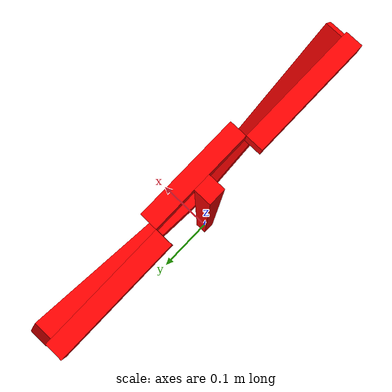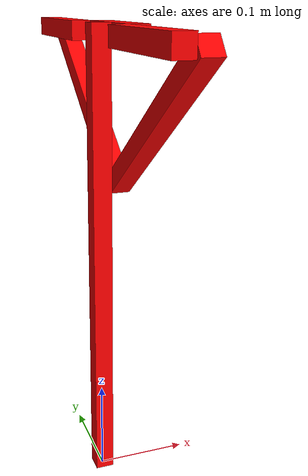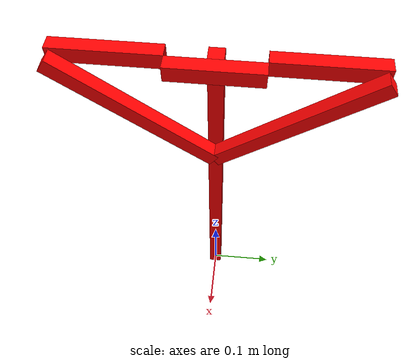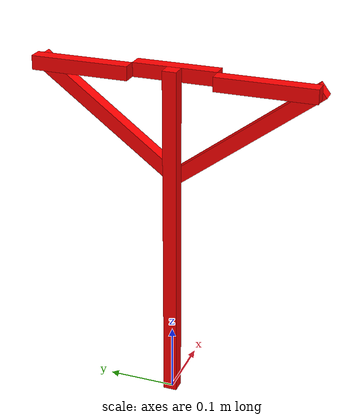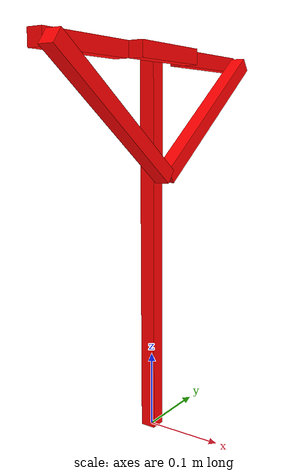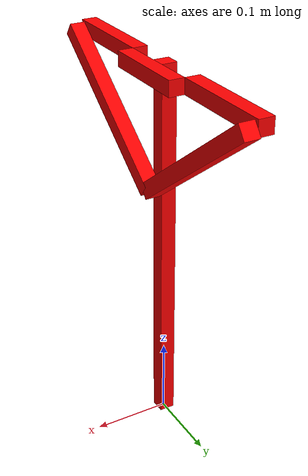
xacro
<?xml version="1.0"?>
<robot xmlns:xacro="http://www.ros.org/wiki/xacro" name="five_link_car">

    <xacro:property name="link_width" value="0.02" />
    <xacro:property name="link1_length" value="0.14" />
    <xacro:property name="link2_length" value="0.25" />
    <xacro:property name="link3_length" value="0.25" />
    <xacro:property name="link4_length" value="0.14" />
    <xacro:property name="link5_length" value="0.12" />
    <xacro:property name="mass_val" value="0.1" />

  <!-- 添加惯性矩阵计算宏 -->
  <xacro:macro name="Box_Inertial_Matrix" params="m l w h x_offset:=0 y_offset:=0 z_offset:=0">
       <inertial>
               <origin xyz="${x_offset} ${y_offset} ${z_offset}" rpy="0 0 0"/>
               <mass value="${m}" />
               <!-- 简单的立方体惯性矩阵计算 -->
               <inertia ixx="${m*(w*w+h*h)/12}" ixy = "0" ixz = "0"
                   iyy="${m*(l*l+h*h)/12}" iyz = "0"
                   izz="${m*(l*l+w*w)/12}" />
       </inertial>
   </xacro:macro>

  <xacro:macro name="five_link_struct" params="connected_to x_offset y_offset z_offset">

    <link name="link5">
      <visual name="">
        <origin xyz="0 0.0 0.0" rpy="0.0 0.0 0.0"/>
        <geometry>
          <box size="${link_width} ${link5_length} ${link_width}"/>
        </geometry>
        <material name="">
          <color rgba="1.0 0.0 0.0 1.0"/>
        </material>
      </visual>
      <collision>
        <origin xyz="0 0.0 0.0" rpy="0.0 0.0 0.0"/>
        <geometry>
          <box size="${link_width} ${link5_length} ${link_width}"/>
        </geometry>
      </collision>
      <xacro:Box_Inertial_Matrix m="${mass_val}" l="${link_width}" w="${link5_length}" h="${link_width}" x_offset="0" y_offset="0.0" z_offset="0.0" />
    </link>
    <joint name="link5_joint" type="fixed">
      <origin xyz="${link_width} ${y_offset} ${z_offset - link_width / 2}" rpy="0.0 0.0 0.0"/>
      <parent link="${connected_to}"/>
      <child link="link5"/>
    </joint>

    <link name="link1">
      <visual name="">
        <origin xyz="${-link_width/2} ${link1_length /2} 0.0" rpy="0.0 0.0 0.0"/>
        <geometry>
          <box size="${link_width} ${link1_length} ${link_width}"/>
        </geometry>
        <material name="">
          <color rgba="1.0 0.0 0.0 1.0"/>
        </material>
      </visual>
      <collision>
        <origin xyz="${-link_width/2} ${link1_length /2} 0.0" rpy="0.0 0.0 0.0"/>
        <geometry>
          <box size="${link_width} ${link1_length} ${link_width}"/>
        </geometry>
      </collision>
      <xacro:Box_Inertial_Matrix m="${mass_val}" l="${link_width}" w="${link1_length}" h="${link_width}" x_offset="${-link_width/2}" y_offset="${link1_length/2}" z_offset="0.0" />
    </link>
    <joint name="link1_joint" type="revolute">
      <origin xyz="${-link_width/2} ${link5_length / 2} 0.0" rpy="0.0 0.0 0.0"/>
      <parent link="link5"/>
      <child link="link1"/>
      <axis xyz="1 0 0.0"/>
      <limit lower="-1.74" upper="0.44" effort="3.07" velocity="70"/>
    </joint>

    <transmission name="link1_joint_trans">
      <type>transmission_interface/SimpleTransmission</type>
      <joint name="link1_joint">
        <hardwareInterface>hardware_interface/EffortJointInterface</hardwareInterface>
      </joint>
      <actuator name="link1_joint_motor">
        <mechanicalReduction>1.0</mechanicalReduction>
        <hardwareInterface>hardware_interface/EffortJointInterface</hardwareInterface>
      </actuator>
    </transmission>
    <link name="link2">
      <visual name="">
        <origin xyz="${link_width/2} ${link2_length / 2} 0.0" rpy="0.0 0.0 0.0"/>
        <geometry>
          <box size="${link_width} ${link2_length} ${link_width}"/>
        </geometry>
        <material name="">
          <color rgba="1.0 0.0 0.0 1.0"/>
        </material>
      </visual>
      <collision>
        <origin xyz="${link_width/2} ${link2_length / 2} 0.0" rpy="0.0 0.0 0.0"/>
        <geometry>
          <box size="${link_width} ${link2_length} ${link_width}"/>
        </geometry>
      </collision>
      <xacro:Box_Inertial_Matrix m="${mass_val}" l="${link_width}" w="${link2_length}" h="${link_width}" x_offset="${link_width/2}" y_offset="${link2_length/2}" z_offset="0.0" />
    </link>
    <joint name="link2_joint" type="revolute">
      <origin xyz="0 ${link1_length} 0.0" rpy="${-pi+0.6435} 0.0 0.0"/>
      <parent link="link1"/>
      <child link="link2"/>
      <axis xyz="1 0.0 0.0"/>
      <limit lower="-0.4" upper="2.5" effort="3.07" velocity="70"/>
    </joint>

    <link name="link3">
      <visual name="">
        <origin xyz="${link_width/2} ${link3_length / 2} 0.0" rpy="0.0 0.0 0.0"/>
        <geometry>
          <box size="${link_width} ${link3_length} ${link_width}"/>
        </geometry>
        <material name="">
          <color rgba="1.0 0.0 0.0 1.0"/>
        </material>
      </visual>
      <collision>
        <origin xyz="${link_width/2} ${link3_length / 2} 0.0" rpy="0.0 0.0 0.0"/>
        <geometry>
          <box size="${link_width} ${link3_length} ${link_width}"/>
        </geometry>
      </collision>
      <xacro:Box_Inertial_Matrix m="${mass_val}" l="${link_width}" w="${link3_length}" h="${link_width}" x_offset="${link_width/2}" y_offset="${link3_length/2}" z_offset="0.0" />
    </link>
    <joint name="link3_joint" type="revolute">
      <origin xyz="0 ${-link4_length} 0.0" rpy="${-0.6435} 0.0 0.0"/>
      <parent link="link4"/>
      <child link="link3"/>
      <axis xyz="1 0.0 0.0"/>
      <limit lower="-2.5" upper="0.4" effort="3.07" velocity="70"/>
    </joint>

    <link name="link4">
      <visual name="">
        <origin xyz="${-link_width/2} ${-link4_length /2} 0.0" rpy="0.0 0.0 0.0"/>
        <geometry>
          <box size="${link_width} ${link4_length} ${link_width}"/>
        </geometry>
        <material name="">
          <color rgba="1.0 0.0 0.0 1.0"/>
        </material>
      </visual>
      <collision>
        <origin xyz="${-link_width/2} ${-link4_length /2} 0.0" rpy="0 0.0 0.0"/>
        <geometry>
          <box size="${link_width} ${link4_length} ${link_width}"/>
        </geometry>
      </collision>
      <xacro:Box_Inertial_Matrix m="${mass_val}" l="${link_width}" w="${link4_length}" h="${link_width}" x_offset="${-link_width/2}" y_offset="${-link4_length/2}" z_offset="0.0" />
    </link>
    <joint name="link4_joint" type="revolute">
      <origin xyz="${-link_width/2} ${-link5_length/2} 0.0" rpy="0 0.0 0.0"/>
      <parent link="link5"/>
      <child link="link4"/>
      <axis xyz="1 0 0.0"/>
      <limit lower="-0.44" upper="1.74" effort="3.07" velocity="70"/>
    </joint>
    <transmission name="link4_joint_trans">
      <type>transmission_interface/SimpleTransmission</type>
      <joint name="link4_joint">
        <hardwareInterface>hardware_interface/EffortJointInterface</hardwareInterface>
      </joint>
      <actuator name="link4_joint_motor">
        <mechanicalReduction>1.0</mechanicalReduction>
        <hardwareInterface>hardware_interface/EffortJointInterface</hardwareInterface>
      </actuator>
    </transmission>
  </xacro:macro>

  <xacro:property name="base_link_height" value="0.5" />
  <xacro:property name="base_link_length" value="0.02" />

  <link name="world"/>
  <link name="base_link">
    <visual name="">
      <origin xyz="0.0 0.0 ${base_link_height / 2}" rpy="0.0 0.0 0.0"/>
      <geometry>
        <box size="${base_link_length} ${base_link_length} ${base_link_height}"/>
      </geometry>
      <material name="">
        <color rgba="1.0 0.0 0.0 1.0"/>
      </material>
    </visual>
    <collision>
      <origin xyz="0.0 0.0 ${base_link_height / 2}" rpy="0.0 0.0 0.0"/>
      <geometry>
        <box size="${base_link_length} ${base_link_length} ${base_link_height}"/>
      </geometry>
    </collision>
    <xacro:Box_Inertial_Matrix m="${mass_val}" l="${base_link_length}" w="${base_link_length}" h="${base_link_height}" x_offset="0.0" y_offset="0.0" z_offset="${base_link_height / 2}" />
  </link>
  <joint name="base_world" type="fixed">
    <parent link="world"/>
    <child link="base_link"/>
  </joint>
  <xacro:five_link_struct connected_to="base_link" x_offset="0" y_offset="0.0" z_offset="${base_link_height}"/>

  <!-- gazebo_ros_control 插件：提供 controller_manager 接口 -->
  <gazebo>
    <plugin name="gazebo_ros_control" filename="libgazebo_ros_control.so">
      <robotNamespace>/</robotNamespace>
      <robotSimType>gazebo_ros_control/DefaultRobotHWSim</robotSimType>
    </plugin>
  </gazebo>

  <gazebo>
    <joint name="link3_conn_link2" type="revolute">
      <parent>link2</parent>
      <child>link3</child>
      <axis>
          <xyz>1 0 0</xyz>
      </axis>
      <pose>0 ${link3_length} 0 0 0 0</pose>
      <limit lower="-3.14" upper="3.14" effort="3.07" velocity="70"/>
    </joint>
  </gazebo>

</robot>
